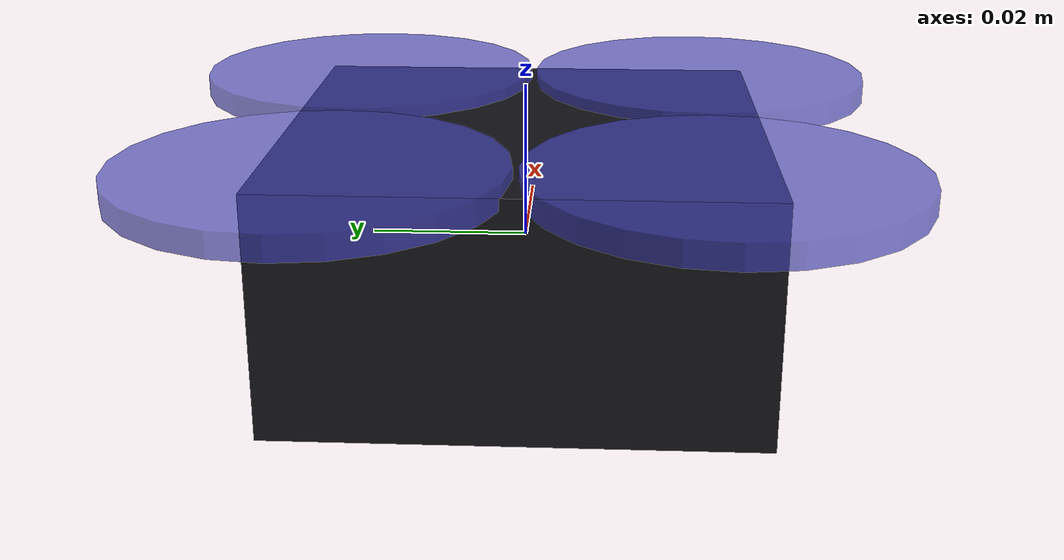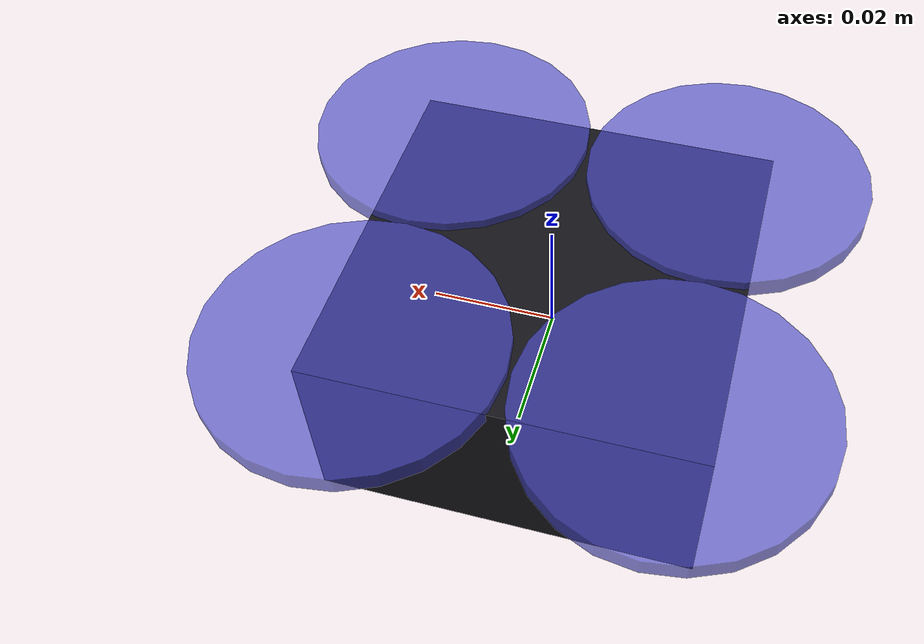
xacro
<?xml version="1.0"?>
<robot name="crazyflie" xmlns:xacro="http://www.ros.org/wiki/xacro">

  <!-- Dimensions physiques approximatives d'un Crazyflie 2.x -->
  <xacro:property name="body_size"   value="0.06"/>  <!-- 6 cm de diamètre effectif -->
  <xacro:property name="body_height" value="0.03"/>
  <xacro:property name="body_mass"   value="0.027"/>

  <xacro:property name="rotor_radius"  value="0.023"/>
  <xacro:property name="rotor_height"  value="0.003"/>
  <xacro:property name="rotor_mass"    value="0.001"/>

  <!-- Bras reliant le corps aux rotors : 4 bras à 45° -->
  <xacro:property name="arm_length" value="0.033"/>

  <!-- Camera looking downward -->
  <xacro:property name="cam_width"  value="640"/>
  <xacro:property name="cam_height" value="480"/>
  <xacro:property name="cam_fov"    value="1.047"/>  <!-- ~60 degrees -->
  <xacro:property name="cam_fps"    value="30"/>

  <!-- ======================== BASE LINK ======================== -->
  <link name="base_link"/>

  <joint name="base_to_body" type="fixed">
    <parent link="base_link"/>
    <child link="body_link"/>
    <origin xyz="0 0 0" rpy="0 0 0"/>
  </joint>

  <!-- Corps principal (boîte plate hexagonale approchée par une boîte) -->
  <link name="body_link">
    <visual>
      <origin xyz="0 0 0" rpy="0 0 0"/>
      <geometry>
        <box size="${body_size} ${body_size} ${body_height}"/>
      </geometry>
      <material name="drone_black">
        <color rgba="0.08 0.08 0.10 1.0"/>
      </material>
    </visual>
    <collision>
      <origin xyz="0 0 0" rpy="0 0 0"/>
      <geometry>
        <box size="${body_size} ${body_size} ${body_height}"/>
      </geometry>
    </collision>
    <inertial>
      <mass value="${body_mass}"/>
      <inertia
        ixx="${body_mass/12.0*(body_size*body_size + body_height*body_height)}"
        ixy="0" ixz="0"
        iyy="${body_mass/12.0*(body_size*body_size + body_height*body_height)}"
        iyz="0"
        izz="${body_mass/6.0*(body_size*body_size)}"/>
    </inertial>
  </link>

  <!-- ======================== 4 ROTORS ======================== -->
  <xacro:macro name="rotor" params="name angle_deg">
    <xacro:property name="angle_rad" value="${angle_deg * 3.14159265358979 / 180.0}"/>

    <link name="${name}_link">
      <visual>
        <origin xyz="0 0 0" rpy="0 0 0"/>
        <geometry>
          <cylinder radius="${rotor_radius}" length="${rotor_height}"/>
        </geometry>
        <material name="rotor_mat">
          <color rgba="0.3 0.3 0.8 0.7"/>
        </material>
      </visual>
      <inertial>
        <mass value="${rotor_mass}"/>
        <inertia
          ixx="${rotor_mass/12.0*(3*rotor_radius*rotor_radius + rotor_height*rotor_height)}"
          ixy="0" ixz="0"
          iyy="${rotor_mass/12.0*(3*rotor_radius*rotor_radius + rotor_height*rotor_height)}"
          iyz="0"
          izz="${rotor_mass/2.0*rotor_radius*rotor_radius}"/>
      </inertial>
    </link>

    <joint name="${name}_joint" type="continuous">
      <parent link="body_link"/>
      <child link="${name}_link"/>
      <origin xyz="${arm_length * cos(angle_rad)} ${arm_length * sin(angle_rad)} ${body_height/2.0}"
              rpy="0 0 0"/>
      <!-- Rotation autour de Z (axe vertical) pour MulticopterVelocityControl -->
      <axis xyz="0 0 1"/>
      <limit effort="100" velocity="1000"/>
    </joint>
  </xacro:macro>

  <xacro:rotor name="rotor_fl" angle_deg="45"/>
  <xacro:rotor name="rotor_fr" angle_deg="-45"/>
  <xacro:rotor name="rotor_bl" angle_deg="135"/>
  <xacro:rotor name="rotor_br" angle_deg="-135"/>

  <!-- ======================== DOWNWARD CAMERA ======================== -->
  <link name="camera_link">
    <visual>
      <origin xyz="0 0 0" rpy="0 0 0"/>
      <geometry>
        <box size="0.012 0.012 0.005"/>
      </geometry>
      <material name="cam_mat">
        <color rgba="0.2 0.2 0.2 1.0"/>
      </material>
    </visual>
    <inertial>
      <mass value="0.001"/>
      <inertia ixx="1e-8" ixy="0" ixz="0" iyy="1e-8" iyz="0" izz="1e-8"/>
    </inertial>
  </link>

  <!-- Caméra orientée vers le bas : rpy pi/2 0 0 pointe -z en avant de la caméra -->
  <joint name="camera_joint" type="fixed">
    <parent link="body_link"/>
    <child link="camera_link"/>
    <!-- Sous le corps, regardant vers le bas -->
    <origin xyz="0 0 ${-body_height/2.0 - 0.005}" rpy="${3.14159265358979/2.0} 0 ${-3.14159265358979/2.0}"/>
  </joint>

  <!-- Gazebo-specific plugins (camera, flight controller) -->
  <xacro:include filename="$(find maze_robot_sim)/description/crazyflie_gz.xacro"/>

</robot>
